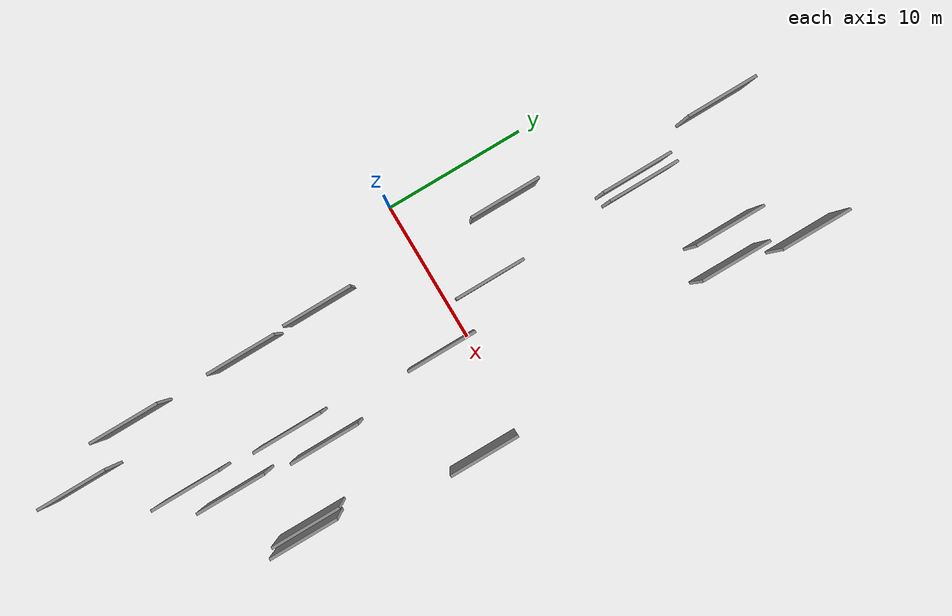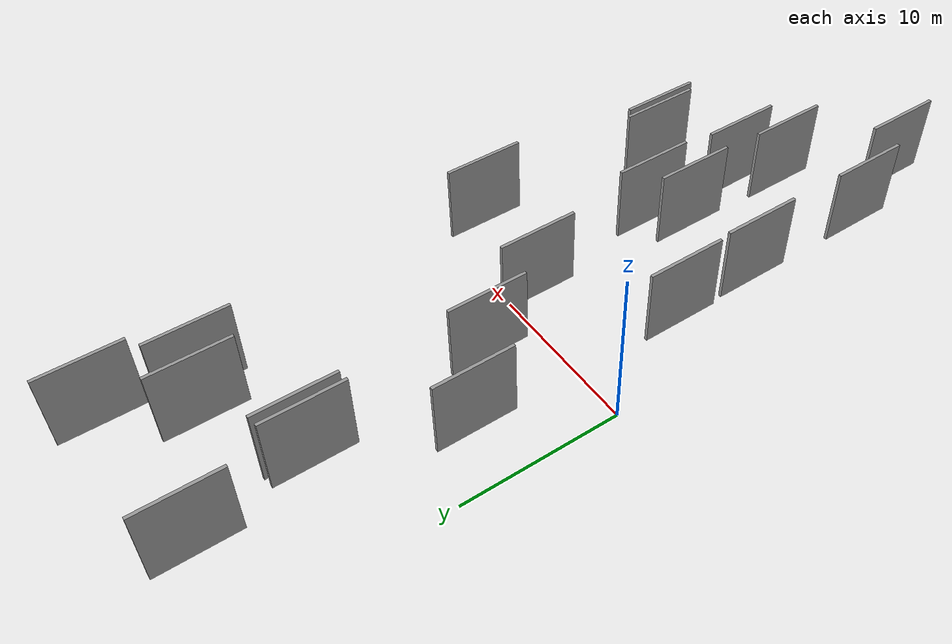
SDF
<sdf version="1.6">
 <world name="default">
  <scene>
   <sky><clouds><speed>12</speed></clouds></sky>
   <ambient>0.4 0.4 0.4 1</ambient>
   <background>0.7 0.7 0.7 1</background>
   <shadows>1</shadows>
  </scene>
  <gravity>0 0 -9.8066</gravity>
  <magnetic_field>6e-06 2.3e-05 -4.2e-05</magnetic_field>
  <physics default="0" name="default_physics" type="ode">
   <ode>
    <solver>
     <type>quick</type>
     <iters>10</iters>
     <sor>1.0</sor>
     <use_dynamic_moi_rescaling>0</use_dynamic_moi_rescaling>
    </solver>
    <constraints>
     <cfm>0</cfm>
     <erp>0.2</erp>
     <contact_max_correcting_vel>100</contact_max_correcting_vel>
     <contact_surface_layer>0.001</contact_surface_layer>
    </constraints>
   </ode>
   <max_step_size>0.004</max_step_size>
   <real_time_factor>1</real_time_factor>
   <real_time_update_rate>250</real_time_update_rate>
  </physics>
  <light name="sun" type="directional">
   <pose>0 0 10 0 0 0</pose>
   <diffuse>0.8 0.8 0.8 1</diffuse>
   <specular>0.2 0.2 0.2 1</specular>
   <attenuation>
    <range>1000</range>
    <constant>0.9</constant>
    <linear>0.01</linear>
    <quadratic>0.001</quadratic>
   </attenuation>
   <direction>-0.5 0.1 -0.9</direction>
  </light>
  <model name="grey_wall_1">
   <static>1</static>
   <pose>15.4256 22.4297 0.0 0.000000 0.000000 1.570796</pose>
   <link name="link">
    <pose>0 0 2.50 0 0 0</pose>
    <collision name="collision"><geometry><box><size>5.00 0.2 5.00</size></box></geometry></collision>
    <visual name="visual">
     <cast_shadows>0</cast_shadows>
     <geometry><box><size>5.00 0.2 5.00</size></box></geometry>
     <material>
      <script>
       <uri>model://grey_wall/materials/scripts</uri>
       <uri>model://grey_wall/materials/textures</uri>
       <name>vrc/grey_wall</name>
      </script>
     </material>
    </visual>
   </link>
  </model>
  <model name="grey_wall_2">
   <static>1</static>
   <pose>9.2713 -12.9443 0.0 0.000000 0.000000 1.570796</pose>
   <link name="link">
    <pose>0 0 2.50 0 0 0</pose>
    <collision name="collision"><geometry><box><size>5.00 0.2 5.00</size></box></geometry></collision>
    <visual name="visual">
     <cast_shadows>0</cast_shadows>
     <geometry><box><size>5.00 0.2 5.00</size></box></geometry>
     <material>
      <script>
       <uri>model://grey_wall/materials/scripts</uri>
       <uri>model://grey_wall/materials/textures</uri>
       <name>vrc/grey_wall</name>
      </script>
     </material>
    </visual>
   </link>
  </model>
  <model name="grey_wall_3">
   <static>1</static>
   <pose>10.7534 -17.9845 0.0 0.000000 0.000000 1.570796</pose>
   <link name="link">
    <pose>0 0 2.50 0 0 0</pose>
    <collision name="collision"><geometry><box><size>5.00 0.2 5.00</size></box></geometry></collision>
    <visual name="visual">
     <cast_shadows>0</cast_shadows>
     <geometry><box><size>5.00 0.2 5.00</size></box></geometry>
     <material>
      <script>
       <uri>model://grey_wall/materials/scripts</uri>
       <uri>model://grey_wall/materials/textures</uri>
       <name>vrc/grey_wall</name>
      </script>
     </material>
    </visual>
   </link>
  </model>
  <model name="grey_wall_4">
   <static>1</static>
   <pose>15.0358 -15.0093 0.0 0.000000 0.000000 1.570796</pose>
   <link name="link">
    <pose>0 0 2.50 0 0 0</pose>
    <collision name="collision"><geometry><box><size>5.00 0.2 5.00</size></box></geometry></collision>
    <visual name="visual">
     <cast_shadows>0</cast_shadows>
     <geometry><box><size>5.00 0.2 5.00</size></box></geometry>
     <material>
      <script>
       <uri>model://grey_wall/materials/scripts</uri>
       <uri>model://grey_wall/materials/textures</uri>
       <name>vrc/grey_wall</name>
      </script>
     </material>
    </visual>
   </link>
  </model>
  <model name="grey_wall_5">
   <static>1</static>
   <pose>5.3535 -26.5035 0.0 0.000000 0.000000 1.570796</pose>
   <link name="link">
    <pose>0 0 2.50 0 0 0</pose>
    <collision name="collision"><geometry><box><size>5.00 0.2 5.00</size></box></geometry></collision>
    <visual name="visual">
     <cast_shadows>0</cast_shadows>
     <geometry><box><size>5.00 0.2 5.00</size></box></geometry>
     <material>
      <script>
       <uri>model://grey_wall/materials/scripts</uri>
       <uri>model://grey_wall/materials/textures</uri>
       <name>vrc/grey_wall</name>
      </script>
     </material>
    </visual>
   </link>
  </model>
  <model name="grey_wall_6">
   <static>1</static>
   <pose>7.5140 3.0892 0.0 0.000000 0.000000 1.570796</pose>
   <link name="link">
    <pose>0 0 2.50 0 0 0</pose>
    <collision name="collision"><geometry><box><size>5.00 0.2 5.00</size></box></geometry></collision>
    <visual name="visual">
     <cast_shadows>0</cast_shadows>
     <geometry><box><size>5.00 0.2 5.00</size></box></geometry>
     <material>
      <script>
       <uri>model://grey_wall/materials/scripts</uri>
       <uri>model://grey_wall/materials/textures</uri>
       <name>vrc/grey_wall</name>
      </script>
     </material>
    </visual>
   </link>
  </model>
  <model name="grey_wall_7">
   <static>1</static>
   <pose>14.5434 17.0379 0.0 0.000000 0.000000 1.570796</pose>
   <link name="link">
    <pose>0 0 2.50 0 0 0</pose>
    <collision name="collision"><geometry><box><size>5.00 0.2 5.00</size></box></geometry></collision>
    <visual name="visual">
     <cast_shadows>0</cast_shadows>
     <geometry><box><size>5.00 0.2 5.00</size></box></geometry>
     <material>
      <script>
       <uri>model://grey_wall/materials/scripts</uri>
       <uri>model://grey_wall/materials/textures</uri>
       <name>vrc/grey_wall</name>
      </script>
     </material>
    </visual>
   </link>
  </model>
  <model name="grey_wall_8">
   <static>1</static>
   <pose>3.3417 -7.1957 0.0 0.000000 0.000000 1.570796</pose>
   <link name="link">
    <pose>0 0 2.50 0 0 0</pose>
    <collision name="collision"><geometry><box><size>5.00 0.2 5.00</size></box></geometry></collision>
    <visual name="visual">
     <cast_shadows>0</cast_shadows>
     <geometry><box><size>5.00 0.2 5.00</size></box></geometry>
     <material>
      <script>
       <uri>model://grey_wall/materials/scripts</uri>
       <uri>model://grey_wall/materials/textures</uri>
       <name>vrc/grey_wall</name>
      </script>
     </material>
    </visual>
   </link>
  </model>
  <model name="grey_wall_9">
   <static>1</static>
   <pose>9.8862 -1.9011 0.0 0.000000 0.000000 1.570796</pose>
   <link name="link">
    <pose>0 0 2.50 0 0 0</pose>
    <collision name="collision"><geometry><box><size>5.00 0.2 5.00</size></box></geometry></collision>
    <visual name="visual">
     <cast_shadows>0</cast_shadows>
     <geometry><box><size>5.00 0.2 5.00</size></box></geometry>
     <material>
      <script>
       <uri>model://grey_wall/materials/scripts</uri>
       <uri>model://grey_wall/materials/textures</uri>
       <name>vrc/grey_wall</name>
      </script>
     </material>
    </visual>
   </link>
  </model>
  <model name="grey_wall_10">
   <static>1</static>
   <pose>3.5840 6.5521 0.0 0.000000 0.000000 1.570796</pose>
   <link name="link">
    <pose>0 0 2.50 0 0 0</pose>
    <collision name="collision"><geometry><box><size>5.00 0.2 5.00</size></box></geometry></collision>
    <visual name="visual">
     <cast_shadows>0</cast_shadows>
     <geometry><box><size>5.00 0.2 5.00</size></box></geometry>
     <material>
      <script>
       <uri>model://grey_wall/materials/scripts</uri>
       <uri>model://grey_wall/materials/textures</uri>
       <name>vrc/grey_wall</name>
      </script>
     </material>
    </visual>
   </link>
  </model>
  <model name="grey_wall_11">
   <static>1</static>
   <pose>11.0925 -11.2667 0.0 0.000000 0.000000 1.570796</pose>
   <link name="link">
    <pose>0 0 2.50 0 0 0</pose>
    <collision name="collision"><geometry><box><size>5.00 0.2 5.00</size></box></geometry></collision>
    <visual name="visual">
     <cast_shadows>0</cast_shadows>
     <geometry><box><size>5.00 0.2 5.00</size></box></geometry>
     <material>
      <script>
       <uri>model://grey_wall/materials/scripts</uri>
       <uri>model://grey_wall/materials/textures</uri>
       <name>vrc/grey_wall</name>
      </script>
     </material>
    </visual>
   </link>
  </model>
  <model name="grey_wall_12">
   <static>1</static>
   <pose>9.0993 -20.3486 0.0 0.000000 0.000000 1.570796</pose>
   <link name="link">
    <pose>0 0 2.50 0 0 0</pose>
    <collision name="collision"><geometry><box><size>5.00 0.2 5.00</size></box></geometry></collision>
    <visual name="visual">
     <cast_shadows>0</cast_shadows>
     <geometry><box><size>5.00 0.2 5.00</size></box></geometry>
     <material>
      <script>
       <uri>model://grey_wall/materials/scripts</uri>
       <uri>model://grey_wall/materials/textures</uri>
       <name>vrc/grey_wall</name>
      </script>
     </material>
    </visual>
   </link>
  </model>
  <model name="grey_wall_13">
   <static>1</static>
   <pose>7.1961 14.6370 0.0 0.000000 0.000000 1.570796</pose>
   <link name="link">
    <pose>0 0 2.50 0 0 0</pose>
    <collision name="collision"><geometry><box><size>5.00 0.2 5.00</size></box></geometry></collision>
    <visual name="visual">
     <cast_shadows>0</cast_shadows>
     <geometry><box><size>5.00 0.2 5.00</size></box></geometry>
     <material>
      <script>
       <uri>model://grey_wall/materials/scripts</uri>
       <uri>model://grey_wall/materials/textures</uri>
       <name>vrc/grey_wall</name>
      </script>
     </material>
    </visual>
   </link>
  </model>
  <model name="grey_wall_14">
   <static>1</static>
   <pose>3.4942 -12.9080 0.0 0.000000 0.000000 1.570796</pose>
   <link name="link">
    <pose>0 0 2.50 0 0 0</pose>
    <collision name="collision"><geometry><box><size>5.00 0.2 5.00</size></box></geometry></collision>
    <visual name="visual">
     <cast_shadows>0</cast_shadows>
     <geometry><box><size>5.00 0.2 5.00</size></box></geometry>
     <material>
      <script>
       <uri>model://grey_wall/materials/scripts</uri>
       <uri>model://grey_wall/materials/textures</uri>
       <name>vrc/grey_wall</name>
      </script>
     </material>
    </visual>
   </link>
  </model>
  <model name="grey_wall_15">
   <static>1</static>
   <pose>16.9478 -2.9710 0.0 0.000000 0.000000 1.570796</pose>
   <link name="link">
    <pose>0 0 2.50 0 0 0</pose>
    <collision name="collision"><geometry><box><size>5.00 0.2 5.00</size></box></geometry></collision>
    <visual name="visual">
     <cast_shadows>0</cast_shadows>
     <geometry><box><size>5.00 0.2 5.00</size></box></geometry>
     <material>
      <script>
       <uri>model://grey_wall/materials/scripts</uri>
       <uri>model://grey_wall/materials/textures</uri>
       <name>vrc/grey_wall</name>
      </script>
     </material>
    </visual>
   </link>
  </model>
  <model name="grey_wall_16">
   <static>1</static>
   <pose>5.1390 21.6288 0.0 0.000000 0.000000 1.570796</pose>
   <link name="link">
    <pose>0 0 2.50 0 0 0</pose>
    <collision name="collision"><geometry><box><size>5.00 0.2 5.00</size></box></geometry></collision>
    <visual name="visual">
     <cast_shadows>0</cast_shadows>
     <geometry><box><size>5.00 0.2 5.00</size></box></geometry>
     <material>
      <script>
       <uri>model://grey_wall/materials/scripts</uri>
       <uri>model://grey_wall/materials/textures</uri>
       <name>vrc/grey_wall</name>
      </script>
     </material>
    </visual>
   </link>
  </model>
  <model name="grey_wall_17">
   <static>1</static>
   <pose>3.4393 -21.5020 0.0 0.000000 0.000000 1.570796</pose>
   <link name="link">
    <pose>0 0 2.50 0 0 0</pose>
    <collision name="collision"><geometry><box><size>5.00 0.2 5.00</size></box></geometry></collision>
    <visual name="visual">
     <cast_shadows>0</cast_shadows>
     <geometry><box><size>5.00 0.2 5.00</size></box></geometry>
     <material>
      <script>
       <uri>model://grey_wall/materials/scripts</uri>
       <uri>model://grey_wall/materials/textures</uri>
       <name>vrc/grey_wall</name>
      </script>
     </material>
    </visual>
   </link>
  </model>
  <model name="grey_wall_18">
   <static>1</static>
   <pose>6.5120 14.5418 0.0 0.000000 0.000000 1.570796</pose>
   <link name="link">
    <pose>0 0 2.50 0 0 0</pose>
    <collision name="collision"><geometry><box><size>5.00 0.2 5.00</size></box></geometry></collision>
    <visual name="visual">
     <cast_shadows>0</cast_shadows>
     <geometry><box><size>5.00 0.2 5.00</size></box></geometry>
     <material>
      <script>
       <uri>model://grey_wall/materials/scripts</uri>
       <uri>model://grey_wall/materials/textures</uri>
       <name>vrc/grey_wall</name>
      </script>
     </material>
    </visual>
   </link>
  </model>
  <model name="grey_wall_19">
   <static>1</static>
   <pose>15.5763 -15.4885 0.0 0.000000 0.000000 1.570796</pose>
   <link name="link">
    <pose>0 0 2.50 0 0 0</pose>
    <collision name="collision"><geometry><box><size>5.00 0.2 5.00</size></box></geometry></collision>
    <visual name="visual">
     <cast_shadows>0</cast_shadows>
     <geometry><box><size>5.00 0.2 5.00</size></box></geometry>
     <material>
      <script>
       <uri>model://grey_wall/materials/scripts</uri>
       <uri>model://grey_wall/materials/textures</uri>
       <name>vrc/grey_wall</name>
      </script>
     </material>
    </visual>
   </link>
  </model>
  <model name="grey_wall_20">
   <static>1</static>
   <pose>12.4262 17.8520 0.0 0.000000 0.000000 1.570796</pose>
   <link name="link">
    <pose>0 0 2.50 0 0 0</pose>
    <collision name="collision"><geometry><box><size>5.00 0.2 5.00</size></box></geometry></collision>
    <visual name="visual">
     <cast_shadows>0</cast_shadows>
     <geometry><box><size>5.00 0.2 5.00</size></box></geometry>
     <material>
      <script>
       <uri>model://grey_wall/materials/scripts</uri>
       <uri>model://grey_wall/materials/textures</uri>
       <name>vrc/grey_wall</name>
      </script>
     </material>
    </visual>
   </link>
  </model>
 </world>
</sdf>
